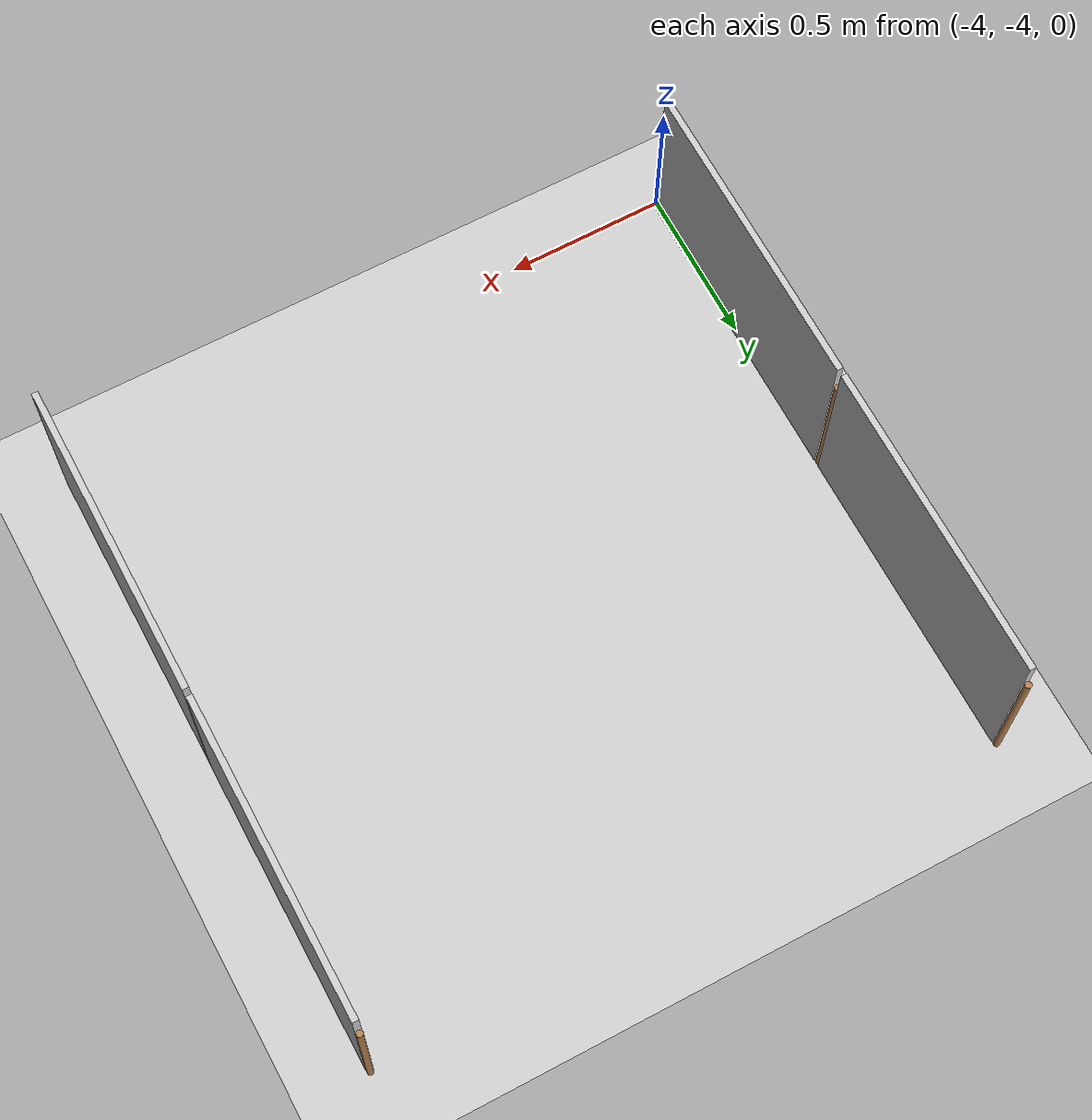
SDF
<sdf version="1.7">
 <world name="default">
  <model name="ground_plane">
   <static>true</static>
   <link name="link">
    <collision name="collision">
     <geometry><plane><normal>0 0 1</normal><size>1 1</size></plane></geometry>
    </collision>
    <visual name="visual">
     <geometry><plane><normal>0 0 1</normal><size>100 100</size></plane></geometry>
     <material>
      <ambient>0.8 0.8 0.8 1</ambient>
      <diffuse>0.8 0.8 0.8 1</diffuse>
      <specular>0.8 0.8 0.8 1</specular>
     </material>
    </visual>
    <inertial>
     <mass>1</mass>
     <inertia><ixx>1</ixx><ixy>0</ixy><ixz>0</ixz><iyy>1</iyy><iyz>0</iyz><izz>1</izz></inertia>
    </inertial>
   </link>
  </model>
  <model name="maze_1_6x5_clone">
   <frame name="plywood_panel_0_0_b::__model__" attached_to="plywood_panel_0_0_b::main">
    <pose relative_to="__model__">0 0 0 0 -0 1.571</pose>
   </frame>
   <static>true</static>
   <link name="plywood_panel_0_0_b::main">
    <pose relative_to="plywood_panel_0_0_b::__model__">0 0 0 0 -0 0</pose>
    <collision name="collision">
     <pose>0 -0.5 0.3 -1.571 -0 -1.571</pose>
     <geometry><box><size>0.98 0.6 0.02</size></box></geometry>
    </collision>
    <visual name="visual">
     <pose>0.01 -0.01 0 3.14159 -1.57059 3.14159</pose>
     <geometry>
      <mesh>
       <scale>1 1 1</scale>
       <uri>/home/mayank/cognipilot/cranium/src/dream_world/models/plywood_panel/meshes/plywood.dae</uri>
      </mesh>
     </geometry>
    </visual>
   </link>
   <frame name="wooden_joint_0_0_b::__model__" attached_to="wooden_joint_0_0_b::link_0">
    <pose relative_to="__model__">0 0 0 0 -0 0</pose>
   </frame>
   <link name="wooden_joint_0_0_b::link_0">
    <pose relative_to="wooden_joint_0_0_b::__model__">0 0 0.25 0 -0 0</pose>
    <inertial>
     <mass>0.00215981</mass>
     <inertia>
      <ixx>0.00018028</ixx>
      <ixy>0</ixy>
      <ixz>0</ixz>
      <iyy>0.00018028</iyy>
      <iyz>0</iyz>
      <izz>5.8e-07</izz>
     </inertia>
    </inertial>
    <visual name="visual">
     <geometry><cylinder><radius>0.01</radius><length>0.5</length></cylinder></geometry>
     <material>
      <lighting>1</lighting>
      <script><uri>file://media/materials/scripts/gazebo.material</uri><name>Gazebo/Wood</name></script>
      <shader type="pixel"><normal_map>__default__</normal_map></shader>
      <ambient>0.3 0.3 0.3 1</ambient>
      <diffuse>0.7 0.7 0.7 1</diffuse>
      <specular>0.01 0.01 0.01 1</specular>
      <emissive>0 0 0 1</emissive>
     </material>
    </visual>
    <collision name="collision">
     <geometry><cylinder><radius>0.01</radius><length>0.5</length></cylinder></geometry>
     <surface>
      <friction>
       <ode><mu>1</mu><mu2>1</mu2><fdir1>0 0 0</fdir1><slip1>0</slip1><slip2>0</slip2></ode>
       <torsional>
        <coefficient>1</coefficient>
        <patch_radius>0</patch_radius>
        <surface_radius>0</surface_radius>
        <use_patch_radius>1</use_patch_radius>
        <ode><slip>0</slip></ode>
       </torsional>
      </friction>
      <bounce><restitution_coefficient>0</restitution_coefficient><threshold>1e+06</threshold></bounce>
      <contact>
       <collide_without_contact>0</collide_without_contact>
       <collide_without_contact_bitmask>1</collide_without_contact_bitmask>
       <collide_bitmask>1</collide_bitmask>
       <ode>
        <soft_cfm>0</soft_cfm>
        <soft_erp>0.2</soft_erp>
        <kp>1e+13</kp>
        <kd>1</kd>
        <max_vel>0.01</max_vel>
        <min_depth>0</min_depth>
       </ode>
       <bullet>
        <split_impulse>1</split_impulse>
        <split_impulse_penetration_threshold>-0.01</split_impulse_penetration_threshold>
        <soft_cfm>0</soft_cfm>
        <soft_erp>0.2</soft_erp>
        <kp>1e+13</kp>
        <kd>1</kd>
       </bullet>
      </contact>
     </surface>
    </collision>
   </link>
   <static>true</static>
   <pose>-2 -2 0 0 0 -1.5708</pose>
  </model>
  <model name="maze_1_6x5_clone_0">
   <frame name="plywood_panel_0_0_b::__model__" attached_to="plywood_panel_0_0_b::main">
    <pose relative_to="__model__">0 0 0 0 -0 1.571</pose>
   </frame>
   <static>true</static>
   <link name="plywood_panel_0_0_b::main">
    <pose relative_to="plywood_panel_0_0_b::__model__">0 0 0 0 -0 0</pose>
    <collision name="collision">
     <pose>0 -0.5 0.3 -1.571 -0 -1.571</pose>
     <geometry><box><size>0.98 0.6 0.02</size></box></geometry>
    </collision>
    <visual name="visual">
     <pose>0.01 -0.01 0 3.14159 -1.57059 3.14159</pose>
     <geometry>
      <mesh>
       <scale>1 1 1</scale>
       <uri>/home/mayank/cognipilot/cranium/src/dream_world/models/plywood_panel/meshes/plywood.dae</uri>
      </mesh>
     </geometry>
    </visual>
   </link>
   <frame name="wooden_joint_0_0_b::__model__" attached_to="wooden_joint_0_0_b::link_0">
    <pose relative_to="__model__">0 0 0 0 -0 0</pose>
   </frame>
   <link name="wooden_joint_0_0_b::link_0">
    <pose relative_to="wooden_joint_0_0_b::__model__">0 0 0.25 0 -0 0</pose>
    <inertial>
     <mass>0.00215981</mass>
     <inertia>
      <ixx>0.00018028</ixx>
      <ixy>0</ixy>
      <ixz>0</ixz>
      <iyy>0.00018028</iyy>
      <iyz>0</iyz>
      <izz>5.8e-07</izz>
     </inertia>
    </inertial>
    <visual name="visual">
     <geometry><cylinder><radius>0.01</radius><length>0.5</length></cylinder></geometry>
     <material>
      <lighting>1</lighting>
      <script><uri>file://media/materials/scripts/gazebo.material</uri><name>Gazebo/Wood</name></script>
      <shader type="pixel"><normal_map>__default__</normal_map></shader>
      <ambient>0.3 0.3 0.3 1</ambient>
      <diffuse>0.7 0.7 0.7 1</diffuse>
      <specular>0.01 0.01 0.01 1</specular>
      <emissive>0 0 0 1</emissive>
     </material>
    </visual>
    <collision name="collision">
     <geometry><cylinder><radius>0.01</radius><length>0.5</length></cylinder></geometry>
     <surface>
      <friction>
       <ode><mu>1</mu><mu2>1</mu2><fdir1>0 0 0</fdir1><slip1>0</slip1><slip2>0</slip2></ode>
       <torsional>
        <coefficient>1</coefficient>
        <patch_radius>0</patch_radius>
        <surface_radius>0</surface_radius>
        <use_patch_radius>1</use_patch_radius>
        <ode><slip>0</slip></ode>
       </torsional>
      </friction>
      <bounce><restitution_coefficient>0</restitution_coefficient><threshold>1e+06</threshold></bounce>
      <contact>
       <collide_without_contact>0</collide_without_contact>
       <collide_without_contact_bitmask>1</collide_without_contact_bitmask>
       <collide_bitmask>1</collide_bitmask>
       <ode>
        <soft_cfm>0</soft_cfm>
        <soft_erp>0.2</soft_erp>
        <kp>1e+13</kp>
        <kd>1</kd>
        <max_vel>0.01</max_vel>
        <min_depth>0</min_depth>
       </ode>
       <bullet>
        <split_impulse>1</split_impulse>
        <split_impulse_penetration_threshold>-0.01</split_impulse_penetration_threshold>
        <soft_cfm>0</soft_cfm>
        <soft_erp>0.2</soft_erp>
        <kp>1e+13</kp>
        <kd>1</kd>
       </bullet>
      </contact>
     </surface>
    </collision>
   </link>
   <static>true</static>
   <pose>-2 -3 0 0 0 -1.5708</pose>
  </model>
  <model name="maze_1_6x5_clone_clone_9">
   <frame name="plywood_panel_0_0_b::__model__" attached_to="plywood_panel_0_0_b::main">
    <pose relative_to="__model__">0 0 0 0 -0 1.571</pose>
   </frame>
   <static>true</static>
   <link name="plywood_panel_0_0_b::main">
    <pose relative_to="plywood_panel_0_0_b::__model__">0 0 0 0 -0 0</pose>
    <collision name="collision">
     <pose>0 -0.5 0.3 -1.571 -0 -1.571</pose>
     <geometry><box><size>0.98 0.6 0.02</size></box></geometry>
    </collision>
    <visual name="visual">
     <pose>0.01 -0.01 0 3.14159 -1.57059 3.14159</pose>
     <geometry>
      <mesh>
       <scale>1 1 1</scale>
       <uri>/home/mayank/cognipilot/cranium/src/dream_world/models/plywood_panel/meshes/plywood.dae</uri>
      </mesh>
     </geometry>
    </visual>
   </link>
   <frame name="wooden_joint_0_0_b::__model__" attached_to="wooden_joint_0_0_b::link_0">
    <pose relative_to="__model__">0 0 0 0 -0 0</pose>
   </frame>
   <link name="wooden_joint_0_0_b::link_0">
    <pose relative_to="wooden_joint_0_0_b::__model__">0 0 0.25 0 -0 0</pose>
    <inertial>
     <mass>0.00215981</mass>
     <inertia>
      <ixx>0.00018028</ixx>
      <ixy>0</ixy>
      <ixz>0</ixz>
      <iyy>0.00018028</iyy>
      <iyz>0</iyz>
      <izz>5.8e-07</izz>
     </inertia>
    </inertial>
    <visual name="visual">
     <geometry><cylinder><radius>0.01</radius><length>0.5</length></cylinder></geometry>
     <material>
      <lighting>1</lighting>
      <script><uri>file://media/materials/scripts/gazebo.material</uri><name>Gazebo/Wood</name></script>
      <shader type="pixel"><normal_map>__default__</normal_map></shader>
      <ambient>0.3 0.3 0.3 1</ambient>
      <diffuse>0.7 0.7 0.7 1</diffuse>
      <specular>0.01 0.01 0.01 1</specular>
      <emissive>0 0 0 1</emissive>
     </material>
    </visual>
    <collision name="collision">
     <geometry><cylinder><radius>0.01</radius><length>0.5</length></cylinder></geometry>
     <surface>
      <friction>
       <ode><mu>1</mu><mu2>1</mu2><fdir1>0 0 0</fdir1><slip1>0</slip1><slip2>0</slip2></ode>
       <torsional>
        <coefficient>1</coefficient>
        <patch_radius>0</patch_radius>
        <surface_radius>0</surface_radius>
        <use_patch_radius>1</use_patch_radius>
        <ode><slip>0</slip></ode>
       </torsional>
      </friction>
      <bounce><restitution_coefficient>0</restitution_coefficient><threshold>1e+06</threshold></bounce>
      <contact>
       <collide_without_contact>0</collide_without_contact>
       <collide_without_contact_bitmask>1</collide_without_contact_bitmask>
       <collide_bitmask>1</collide_bitmask>
       <ode>
        <soft_cfm>0</soft_cfm>
        <soft_erp>0.2</soft_erp>
        <kp>1e+13</kp>
        <kd>1</kd>
        <max_vel>0.01</max_vel>
        <min_depth>0</min_depth>
       </ode>
       <bullet>
        <split_impulse>1</split_impulse>
        <split_impulse_penetration_threshold>-0.01</split_impulse_penetration_threshold>
        <soft_cfm>0</soft_cfm>
        <soft_erp>0.2</soft_erp>
        <kp>1e+13</kp>
        <kd>1</kd>
       </bullet>
      </contact>
     </surface>
    </collision>
   </link>
   <static>true</static>
   <pose>-4 -2 0 0 0 -1.5708</pose>
  </model>
  <model name="maze_1_6x5_clone_clone_10">
   <frame name="plywood_panel_0_0_b::__model__" attached_to="plywood_panel_0_0_b::main">
    <pose relative_to="__model__">0 0 0 0 -0 1.571</pose>
   </frame>
   <static>true</static>
   <link name="plywood_panel_0_0_b::main">
    <pose relative_to="plywood_panel_0_0_b::__model__">0 0 0 0 -0 0</pose>
    <collision name="collision">
     <pose>0 -0.5 0.3 -1.571 -0 -1.571</pose>
     <geometry><box><size>0.98 0.6 0.02</size></box></geometry>
    </collision>
    <visual name="visual">
     <pose>0.01 -0.01 0 3.14159 -1.57059 3.14159</pose>
     <geometry>
      <mesh>
       <scale>1 1 1</scale>
       <uri>/home/mayank/cognipilot/cranium/src/dream_world/models/plywood_panel/meshes/plywood.dae</uri>
      </mesh>
     </geometry>
    </visual>
   </link>
   <frame name="wooden_joint_0_0_b::__model__" attached_to="wooden_joint_0_0_b::link_0">
    <pose relative_to="__model__">0 0 0 0 -0 0</pose>
   </frame>
   <link name="wooden_joint_0_0_b::link_0">
    <pose relative_to="wooden_joint_0_0_b::__model__">0 0 0.25 0 -0 0</pose>
    <inertial>
     <mass>0.00215981</mass>
     <inertia>
      <ixx>0.00018028</ixx>
      <ixy>0</ixy>
      <ixz>0</ixz>
      <iyy>0.00018028</iyy>
      <iyz>0</iyz>
      <izz>5.8e-07</izz>
     </inertia>
    </inertial>
    <visual name="visual">
     <geometry><cylinder><radius>0.01</radius><length>0.5</length></cylinder></geometry>
     <material>
      <lighting>1</lighting>
      <script><uri>file://media/materials/scripts/gazebo.material</uri><name>Gazebo/Wood</name></script>
      <shader type="pixel"><normal_map>__default__</normal_map></shader>
      <ambient>0.3 0.3 0.3 1</ambient>
      <diffuse>0.7 0.7 0.7 1</diffuse>
      <specular>0.01 0.01 0.01 1</specular>
      <emissive>0 0 0 1</emissive>
     </material>
    </visual>
    <collision name="collision">
     <geometry><cylinder><radius>0.01</radius><length>0.5</length></cylinder></geometry>
     <surface>
      <friction>
       <ode><mu>1</mu><mu2>1</mu2><fdir1>0 0 0</fdir1><slip1>0</slip1><slip2>0</slip2></ode>
       <torsional>
        <coefficient>1</coefficient>
        <patch_radius>0</patch_radius>
        <surface_radius>0</surface_radius>
        <use_patch_radius>1</use_patch_radius>
        <ode><slip>0</slip></ode>
       </torsional>
      </friction>
      <bounce><restitution_coefficient>0</restitution_coefficient><threshold>1e+06</threshold></bounce>
      <contact>
       <collide_without_contact>0</collide_without_contact>
       <collide_without_contact_bitmask>1</collide_without_contact_bitmask>
       <collide_bitmask>1</collide_bitmask>
       <ode>
        <soft_cfm>0</soft_cfm>
        <soft_erp>0.2</soft_erp>
        <kp>1e+13</kp>
        <kd>1</kd>
        <max_vel>0.01</max_vel>
        <min_depth>0</min_depth>
       </ode>
       <bullet>
        <split_impulse>1</split_impulse>
        <split_impulse_penetration_threshold>-0.01</split_impulse_penetration_threshold>
        <soft_cfm>0</soft_cfm>
        <soft_erp>0.2</soft_erp>
        <kp>1e+13</kp>
        <kd>1</kd>
       </bullet>
      </contact>
     </surface>
    </collision>
   </link>
   <static>true</static>
   <pose>-4 -3 0 0 0 -1.5708</pose>
  </model>
 </world>
</sdf>
